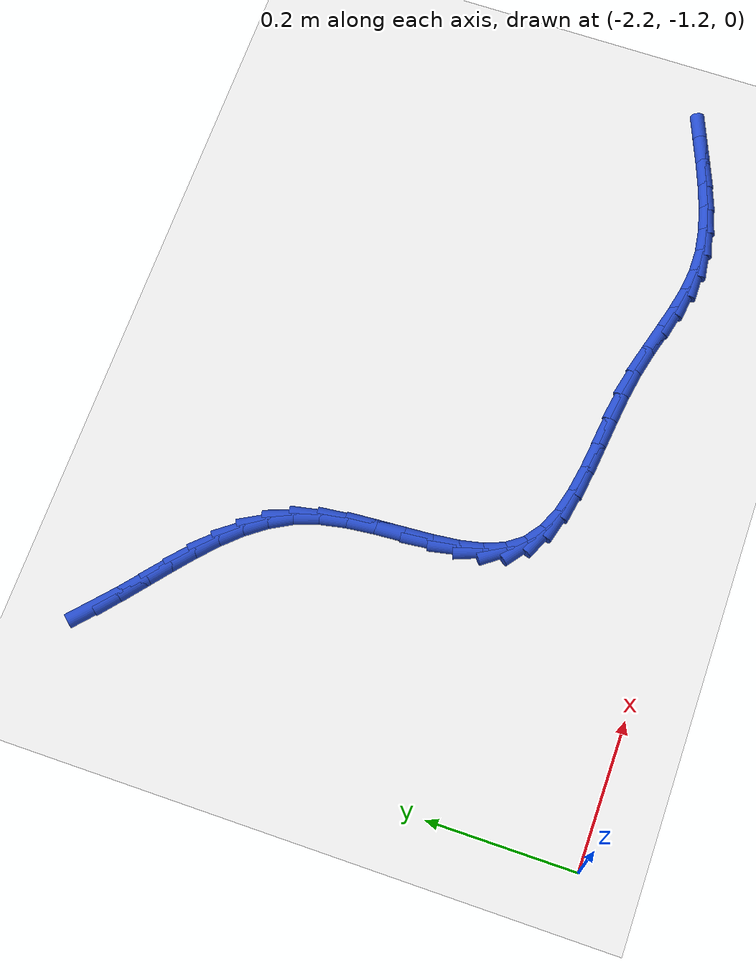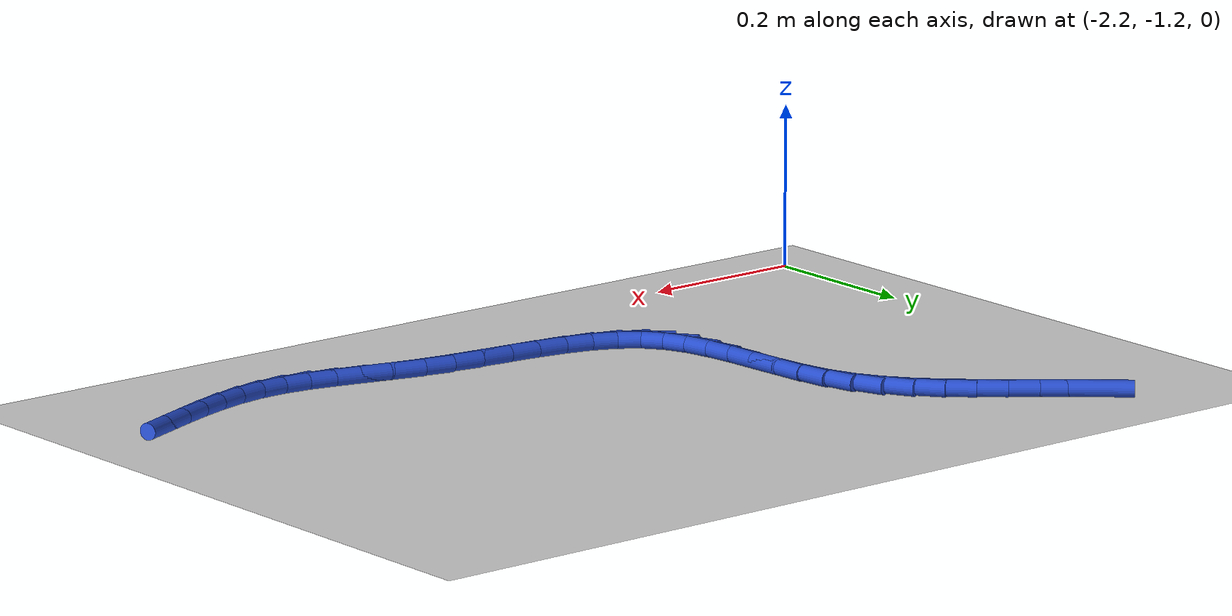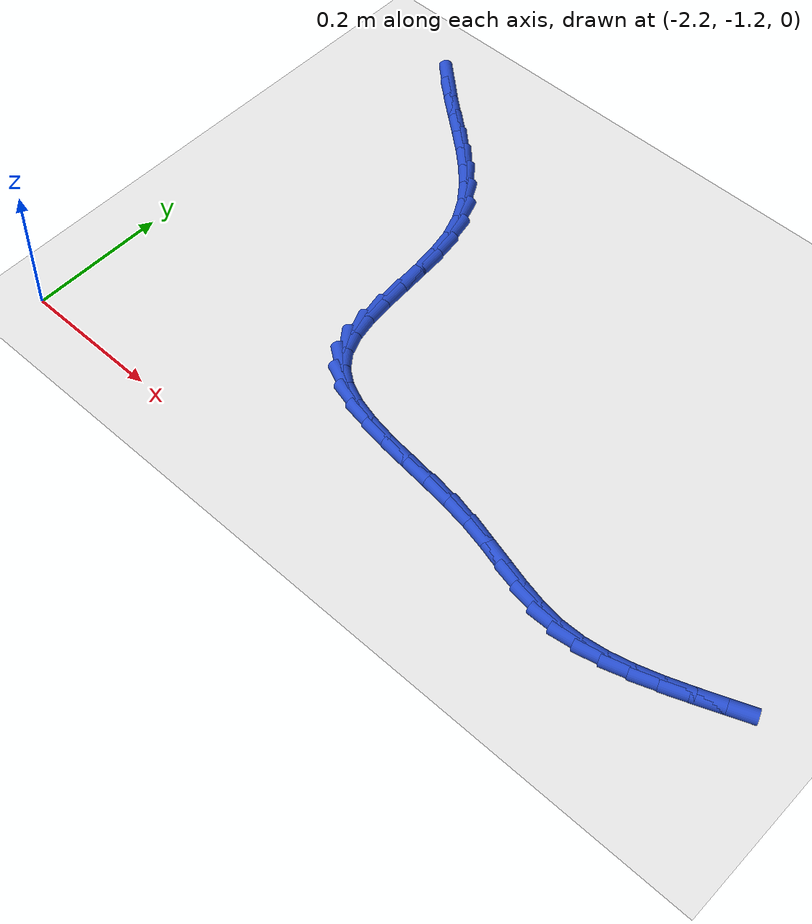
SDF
<sdf version="1.6">
 <world name="default">
  <model name="ground_plane">
   <static>1</static>
   <link name="link">
    <collision name="collision">
     <geometry><plane><normal>0 0 1</normal><size>100 100</size></plane></geometry>
     <surface><friction><ode><mu>100</mu><mu2>50</mu2></ode></friction></surface>
    </collision>
    <visual name="visual">
     <cast_shadows>0</cast_shadows>
     <geometry><plane><normal>0 0 1</normal><size>100 100</size></plane></geometry>
     <material>
      <script><uri>file://media/materials/scripts/gazebo.material</uri><name>Gazebo/WhiteGlow</name></script>
     </material>
    </visual>
   </link>
  </model>
  <model name="line">
   <link name="link_131">
    <pose>-2.0807730238177555 -0.5098172041686312 0.01 0 1.57 -0.728587847253927</pose>
    <collision name="collision">
     <geometry><cylinder><radius>0.01</radius><length>0.08</length></cylinder></geometry>
    </collision>
    <visual name="visual">
     <material>
      <script><name>Gazebo/Blue</name><uri>file://media/materials/scripts/gazebo.material</uri></script>
     </material>
     <geometry><cylinder><radius>0.01</radius><length>0.08</length></cylinder></geometry>
    </visual>
   </link>
   <link name="link_132">
    <pose>-2.054138842265501 -0.5335849518046637 0.01 0 1.57 -0.689794754759537</pose>
    <collision name="collision">
     <geometry><cylinder><radius>0.01</radius><length>0.08</length></cylinder></geometry>
    </collision>
    <visual name="visual">
     <material>
      <script><name>Gazebo/Blue</name><uri>file://media/materials/scripts/gazebo.material</uri></script>
     </material>
     <geometry><cylinder><radius>0.01</radius><length>0.08</length></cylinder></geometry>
    </visual>
   </link>
   <link name="link_133">
    <pose>-2.0263607043411946 -0.5565016686327958 0.01 0 1.57 -0.6789841320614153</pose>
    <collision name="collision">
     <geometry><cylinder><radius>0.01</radius><length>0.08</length></cylinder></geometry>
    </collision>
    <visual name="visual">
     <material>
      <script><name>Gazebo/Blue</name><uri>file://media/materials/scripts/gazebo.material</uri></script>
     </material>
     <geometry><cylinder><radius>0.01</radius><length>0.08</length></cylinder></geometry>
    </visual>
   </link>
   <link name="link_134">
    <pose>-1.9983016380122223 -0.5791448462578904 0.01 0 1.57 -0.6958039018549207</pose>
    <collision name="collision">
     <geometry><cylinder><radius>0.01</radius><length>0.08</length></cylinder></geometry>
    </collision>
    <visual name="visual">
     <material>
      <script><name>Gazebo/Blue</name><uri>file://media/materials/scripts/gazebo.material</uri></script>
     </material>
     <geometry><cylinder><radius>0.01</radius><length>0.08</length></cylinder></geometry>
    </visual>
   </link>
   <link name="link_135">
    <pose>-1.9708246712459678 -0.6020919762848109 0.01 0 1.57 -0.7412382241605778</pose>
    <collision name="collision">
     <geometry><cylinder><radius>0.01</radius><length>0.08</length></cylinder></geometry>
    </collision>
    <visual name="visual">
     <material>
      <script><name>Gazebo/Blue</name><uri>file://media/materials/scripts/gazebo.material</uri></script>
     </material>
     <geometry><cylinder><radius>0.01</radius><length>0.08</length></cylinder></geometry>
    </visual>
   </link>
   <link name="link_136">
    <pose>-1.9447928320098173 -0.6259205503184188 0.01 0 1.57 -0.8172948673387739</pose>
    <collision name="collision">
     <geometry><cylinder><radius>0.01</radius><length>0.08</length></cylinder></geometry>
    </collision>
    <visual name="visual">
     <material>
      <script><name>Gazebo/Blue</name><uri>file://media/materials/scripts/gazebo.material</uri></script>
     </material>
     <geometry><cylinder><radius>0.01</radius><length>0.08</length></cylinder></geometry>
    </visual>
   </link>
   <link name="link_137">
    <pose>-1.9210691482711555 -0.6512080599635781 0.01 0 1.57 -0.9259019110085324</pose>
    <collision name="collision">
     <geometry><cylinder><radius>0.01</radius><length>0.08</length></cylinder></geometry>
    </collision>
    <visual name="visual">
     <material>
      <script><name>Gazebo/Blue</name><uri>file://media/materials/scripts/gazebo.material</uri></script>
     </material>
     <geometry><cylinder><radius>0.01</radius><length>0.08</length></cylinder></geometry>
    </visual>
   </link>
   <link name="link_138">
    <pose>-1.900516647997367 -0.6785319968251513 0.01 0 1.57 -1.06660856779942</pose>
    <collision name="collision">
     <geometry><cylinder><radius>0.01</radius><length>0.08</length></cylinder></geometry>
    </collision>
    <visual name="visual">
     <material>
      <script><name>Gazebo/Blue</name><uri>file://media/materials/scripts/gazebo.material</uri></script>
     </material>
     <geometry><cylinder><radius>0.01</radius><length>0.08</length></cylinder></geometry>
    </visual>
   </link>
   <link name="link_139">
    <pose>-1.8839983591558362 -0.7084698525080023 0.01 0 1.57 -1.2318612897475034</pose>
    <collision name="collision">
     <geometry><cylinder><radius>0.01</radius><length>0.08</length></cylinder></geometry>
    </collision>
    <visual name="visual">
     <material>
      <script><name>Gazebo/Blue</name><uri>file://media/materials/scripts/gazebo.material</uri></script>
     </material>
     <geometry><cylinder><radius>0.01</radius><length>0.08</length></cylinder></geometry>
    </visual>
   </link>
   <link name="link_140">
    <pose>-1.8723311757475536 -0.7415645735404045 0.01 0 1.57 -1.3753827107029455</pose>
    <collision name="collision">
     <geometry><cylinder><radius>0.01</radius><length>0.08</length></cylinder></geometry>
    </collision>
    <visual name="visual">
     <material>
      <script><name>Gazebo/Blue</name><uri>file://media/materials/scripts/gazebo.material</uri></script>
     </material>
     <geometry><cylinder><radius>0.01</radius><length>0.08</length></cylinder></geometry>
    </visual>
   </link>
   <link name="link_141">
    <pose>-1.8652138138767353 -0.7775218157492017 0.01 0 1.57 -1.4644732888978844</pose>
    <collision name="collision">
     <geometry><cylinder><radius>0.01</radius><length>0.08</length></cylinder></geometry>
    </collision>
    <visual name="visual">
     <material>
      <script><name>Gazebo/Blue</name><uri>file://media/materials/scripts/gazebo.material</uri></script>
     </material>
     <geometry><cylinder><radius>0.01</radius><length>0.08</length></cylinder></geometry>
    </visual>
   </link>
   <link name="link_142">
    <pose>-1.861194140336661 -0.8151854799314002 0.01 0 1.57 -1.5073109072294184</pose>
    <collision name="collision">
     <geometry><cylinder><radius>0.01</radius><length>0.08</length></cylinder></geometry>
    </collision>
    <visual name="visual">
     <material>
      <script><name>Gazebo/Blue</name><uri>file://media/materials/scripts/gazebo.material</uri></script>
     </material>
     <geometry><cylinder><radius>0.01</radius><length>0.08</length></cylinder></geometry>
    </visual>
   </link>
   <link name="link_143">
    <pose>-1.8587673519723662 -0.8533600276695162 0.01 0 1.57 -1.5084947437628027</pose>
    <collision name="collision">
     <geometry><cylinder><radius>0.01</radius><length>0.08</length></cylinder></geometry>
    </collision>
    <visual name="visual">
     <material>
      <script><name>Gazebo/Blue</name><uri>file://media/materials/scripts/gazebo.material</uri></script>
     </material>
     <geometry><cylinder><radius>0.01</radius><length>0.08</length></cylinder></geometry>
    </visual>
   </link>
   <link name="link_144">
    <pose>-1.856428645628885 -0.8908499205460627 0.01 0 1.57 -1.4657239139718565</pose>
    <collision name="collision">
     <geometry><cylinder><radius>0.01</radius><length>0.08</length></cylinder></geometry>
    </collision>
    <visual name="visual">
     <material>
      <script><name>Gazebo/Blue</name><uri>file://media/materials/scripts/gazebo.material</uri></script>
     </material>
     <geometry><cylinder><radius>0.01</radius><length>0.08</length></cylinder></geometry>
    </visual>
   </link>
   <link name="link_145">
    <pose>-1.8526732181512533 -0.9264596201435557 0.01 0 1.57 -1.3683768525945748</pose>
    <collision name="collision">
     <geometry><cylinder><radius>0.01</radius><length>0.08</length></cylinder></geometry>
    </collision>
    <visual name="visual">
     <material>
      <script><name>Gazebo/Blue</name><uri>file://media/materials/scripts/gazebo.material</uri></script>
     </material>
     <geometry><cylinder><radius>0.01</radius><length>0.08</length></cylinder></geometry>
    </visual>
   </link>
   <link name="link_146">
    <pose>-1.8459962663845046 -0.9589935880445097 0.01 0 1.57 -1.196460365667773</pose>
    <collision name="collision">
     <geometry><cylinder><radius>0.01</radius><length>0.08</length></cylinder></geometry>
    </collision>
    <visual name="visual">
     <material>
      <script><name>Gazebo/Blue</name><uri>file://media/materials/scripts/gazebo.material</uri></script>
     </material>
     <geometry><cylinder><radius>0.01</radius><length>0.08</length></cylinder></geometry>
    </visual>
   </link>
   <link name="link_147">
    <pose>-1.8348929871736743 -0.9872562858314394 0.01 0 1.57 -0.9303367065923414</pose>
    <collision name="collision">
     <geometry><cylinder><radius>0.01</radius><length>0.08</length></cylinder></geometry>
    </collision>
    <visual name="visual">
     <material>
      <script><name>Gazebo/Blue</name><uri>file://media/materials/scripts/gazebo.material</uri></script>
     </material>
     <geometry><cylinder><radius>0.01</radius><length>0.08</length></cylinder></geometry>
    </visual>
   </link>
   <link name="link_148">
    <pose>-1.8178862095953472 -1.0100762578802078 0.01 0 1.57 -0.6337921148140647</pose>
    <collision name="collision">
     <geometry><cylinder><radius>0.01</radius><length>0.08</length></cylinder></geometry>
    </collision>
    <visual name="visual">
     <material>
      <script><name>Gazebo/Blue</name><uri>file://media/materials/scripts/gazebo.material</uri></script>
     </material>
     <geometry><cylinder><radius>0.01</radius><length>0.08</length></cylinder></geometry>
    </visual>
   </link>
   <link name="link_149">
    <pose>-1.7945678616711962 -1.0272138187320627 0.01 0 1.57 -0.409124446595173</pose>
    <collision name="collision">
     <geometry><cylinder><radius>0.01</radius><length>0.08</length></cylinder></geometry>
    </collision>
    <visual name="visual">
     <material>
      <script><name>Gazebo/Blue</name><uri>file://media/materials/scripts/gazebo.material</uri></script>
     </material>
     <geometry><cylinder><radius>0.01</radius><length>0.08</length></cylinder></geometry>
    </visual>
   </link>
   <link name="link_150">
    <pose>-1.7659157231831977 -1.0396371181149193 0.01 0 1.57 -0.2600378133634597</pose>
    <collision name="collision">
     <geometry><cylinder><radius>0.01</radius><length>0.08</length></cylinder></geometry>
    </collision>
    <visual name="visual">
     <material>
      <script><name>Gazebo/Blue</name><uri>file://media/materials/scripts/gazebo.material</uri></script>
     </material>
     <geometry><cylinder><radius>0.01</radius><length>0.08</length></cylinder></geometry>
    </visual>
   </link>
   <link name="link_151">
    <pose>-1.7329998970123934 -1.048394769692869 0.01 0 1.57 -0.16844446109720876</pose>
    <collision name="collision">
     <geometry><cylinder><radius>0.01</radius><length>0.08</length></cylinder></geometry>
    </collision>
    <visual name="visual">
     <material>
      <script><name>Gazebo/Blue</name><uri>file://media/materials/scripts/gazebo.material</uri></script>
     </material>
     <geometry><cylinder><radius>0.01</radius><length>0.08</length></cylinder></geometry>
    </visual>
   </link>
   <link name="link_152">
    <pose>-1.6968904860398275 -1.0545353871300063 0.01 0 1.57 -0.11902280034102855</pose>
    <collision name="collision">
     <geometry><cylinder><radius>0.01</radius><length>0.08</length></cylinder></geometry>
    </collision>
    <visual name="visual">
     <material>
      <script><name>Gazebo/Blue</name><uri>file://media/materials/scripts/gazebo.material</uri></script>
     </material>
     <geometry><cylinder><radius>0.01</radius><length>0.08</length></cylinder></geometry>
    </visual>
   </link>
   <link name="link_153">
    <pose>-1.6586575931465424 -1.0591075840904223 0.01 0 1.57 -0.10278676390685734</pose>
    <collision name="collision">
     <geometry><cylinder><radius>0.01</radius><length>0.08</length></cylinder></geometry>
    </collision>
    <visual name="visual">
     <material>
      <script><name>Gazebo/Blue</name><uri>file://media/materials/scripts/gazebo.material</uri></script>
     </material>
     <geometry><cylinder><radius>0.01</radius><length>0.08</length></cylinder></geometry>
    </visual>
   </link>
   <link name="link_154">
    <pose>-1.6193713212135816 -1.063159974238211 0.01 0 1.57 -0.11613533912081195</pose>
    <collision name="collision">
     <geometry><cylinder><radius>0.01</radius><length>0.08</length></cylinder></geometry>
    </collision>
    <visual name="visual">
     <material>
      <script><name>Gazebo/Blue</name><uri>file://media/materials/scripts/gazebo.material</uri></script>
     </material>
     <geometry><cylinder><radius>0.01</radius><length>0.08</length></cylinder></geometry>
    </visual>
   </link>
   <link name="link_155">
    <pose>-1.580101773121988 -1.0677411712374647 0.01 0 1.57 -0.15991080972067562</pose>
    <collision name="collision">
     <geometry><cylinder><radius>0.01</radius><length>0.08</length></cylinder></geometry>
    </collision>
    <visual name="visual">
     <material>
      <script><name>Gazebo/Blue</name><uri>file://media/materials/scripts/gazebo.material</uri></script>
     </material>
     <geometry><cylinder><radius>0.01</radius><length>0.08</length></cylinder></geometry>
    </visual>
   </link>
   <link name="link_156">
    <pose>-1.541918936062254 -1.0738996027123378 0.01 0 1.57 -0.22387864984766942</pose>
    <collision name="collision">
     <geometry><cylinder><radius>0.01</radius><length>0.08</length></cylinder></geometry>
    </collision>
    <visual name="visual">
     <material>
      <script><name>Gazebo/Blue</name><uri>file://media/materials/scripts/gazebo.material</uri></script>
     </material>
     <geometry><cylinder><radius>0.01</radius><length>0.08</length></cylinder></geometry>
    </visual>
   </link>
   <link name="link_157">
    <pose>-1.5055762551730019 -1.0821746705750246 0.01 0 1.57 -0.2617969424689411</pose>
    <collision name="collision">
     <geometry><cylinder><radius>0.01</radius><length>0.08</length></cylinder></geometry>
    </collision>
    <visual name="visual">
     <material>
      <script><name>Gazebo/Blue</name><uri>file://media/materials/scripts/gazebo.material</uri></script>
     </material>
     <geometry><cylinder><radius>0.01</radius><length>0.08</length></cylinder></geometry>
    </visual>
   </link>
   <link name="link_158">
    <pose>-1.4708207114096148 -1.0914872993682874 0.01 0 1.57 -0.26017378099131777</pose>
    <collision name="collision">
     <geometry><cylinder><radius>0.01</radius><length>0.08</length></cylinder></geometry>
    </collision>
    <visual name="visual">
     <material>
      <script><name>Gazebo/Blue</name><uri>file://media/materials/scripts/gazebo.material</uri></script>
     </material>
     <geometry><cylinder><radius>0.01</radius><length>0.08</length></cylinder></geometry>
    </visual>
   </link>
   <link name="link_159">
    <pose>-1.4371997030833632 -1.1004374682915674 0.01 0 1.57 -0.21484383126091097</pose>
    <collision name="collision">
     <geometry><cylinder><radius>0.01</radius><length>0.08</length></cylinder></geometry>
    </collision>
    <visual name="visual">
     <material>
      <script><name>Gazebo/Blue</name><uri>file://media/materials/scripts/gazebo.material</uri></script>
     </material>
     <geometry><cylinder><radius>0.01</radius><length>0.08</length></cylinder></geometry>
    </visual>
   </link>
   <link name="link_160">
    <pose>-1.4042606285055177 -1.107625156544306 0.01 0 1.57 -0.1224421542612528</pose>
    <collision name="collision">
     <geometry><cylinder><radius>0.01</radius><length>0.08</length></cylinder></geometry>
    </collision>
    <visual name="visual">
     <material>
      <script><name>Gazebo/Blue</name><uri>file://media/materials/scripts/gazebo.material</uri></script>
     </material>
     <geometry><cylinder><radius>0.01</radius><length>0.08</length></cylinder></geometry>
    </visual>
   </link>
   <link name="link_161">
    <pose>-1.3715508859873513 -1.1116503433259446 0.01 0 1.57 0.012284996858031715</pose>
    <collision name="collision">
     <geometry><cylinder><radius>0.01</radius><length>0.08</length></cylinder></geometry>
    </collision>
    <visual name="visual">
     <material>
      <script><name>Gazebo/Blue</name><uri>file://media/materials/scripts/gazebo.material</uri></script>
     </material>
     <geometry><cylinder><radius>0.01</radius><length>0.08</length></cylinder></geometry>
    </visual>
   </link>
   <link name="link_162">
    <pose>-1.3386470308341445 -1.1112460992322382 0.01 0 1.57 0.14254328084868406</pose>
    <collision name="collision">
     <geometry><cylinder><radius>0.01</radius><length>0.08</length></cylinder></geometry>
    </collision>
    <visual name="visual">
     <material>
      <script><name>Gazebo/Blue</name><uri>file://media/materials/scripts/gazebo.material</uri></script>
     </material>
     <geometry><cylinder><radius>0.01</radius><length>0.08</length></cylinder></geometry>
    </visual>
   </link>
   <link name="link_163">
    <pose>-1.3054173366197548 -1.1064770858892643 0.01 0 1.57 0.24280434281248692</pose>
    <collision name="collision">
     <geometry><cylinder><radius>0.01</radius><length>0.08</length></cylinder></geometry>
    </collision>
    <visual name="visual">
     <material>
      <script><name>Gazebo/Blue</name><uri>file://media/materials/scripts/gazebo.material</uri></script>
     </material>
     <geometry><cylinder><radius>0.01</radius><length>0.08</length></cylinder></geometry>
    </visual>
   </link>
   <link name="link_164">
    <pose>-1.2718980398642445 -1.098174656545407 0.01 0 1.57 0.3147629038412533</pose>
    <collision name="collision">
     <geometry><cylinder><radius>0.01</radius><length>0.08</length></cylinder></geometry>
    </collision>
    <visual name="visual">
     <material>
      <script><name>Gazebo/Blue</name><uri>file://media/materials/scripts/gazebo.material</uri></script>
     </material>
     <geometry><cylinder><radius>0.01</radius><length>0.08</length></cylinder></geometry>
    </visual>
   </link>
   <link name="link_165">
    <pose>-1.2381273930074024 -1.0871793664117508 0.01 0 1.57 0.36144301600078893</pose>
    <collision name="collision">
     <geometry><cylinder><radius>0.01</radius><length>0.08</length></cylinder></geometry>
    </collision>
    <visual name="visual">
     <material>
      <script><name>Gazebo/Blue</name><uri>file://media/materials/scripts/gazebo.material</uri></script>
     </material>
     <geometry><cylinder><radius>0.01</radius><length>0.08</length></cylinder></geometry>
    </visual>
   </link>
   <link name="link_166">
    <pose>-1.204143648489019 -1.0743317706993816 0.01 0 1.57 0.3854408130235789</pose>
    <collision name="collision">
     <geometry><cylinder><radius>0.01</radius><length>0.08</length></cylinder></geometry>
    </collision>
    <visual name="visual">
     <material>
      <script><name>Gazebo/Blue</name><uri>file://media/materials/scripts/gazebo.material</uri></script>
     </material>
     <geometry><cylinder><radius>0.01</radius><length>0.08</length></cylinder></geometry>
    </visual>
   </link>
   <link name="link_167">
    <pose>-1.169985058748882 -1.0604724246193828 0.01 0 1.57 0.3883360490583201</pose>
    <collision name="collision">
     <geometry><cylinder><radius>0.01</radius><length>0.08</length></cylinder></geometry>
    </collision>
    <visual name="visual">
     <material>
      <script><name>Gazebo/Blue</name><uri>file://media/materials/scripts/gazebo.material</uri></script>
     </material>
     <geometry><cylinder><radius>0.01</radius><length>0.08</length></cylinder></geometry>
    </visual>
   </link>
  </model>
 </world>
</sdf>
